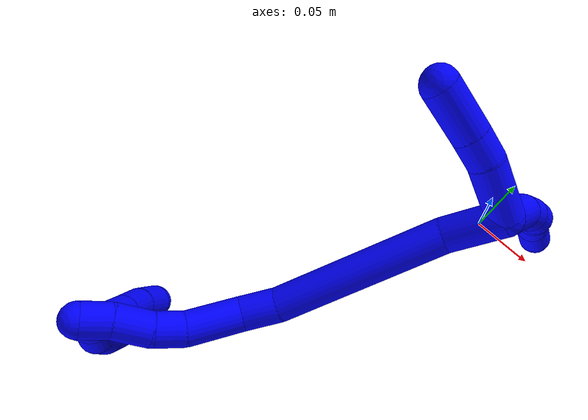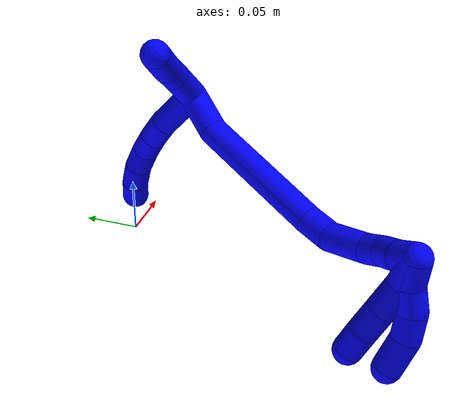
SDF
<sdf version="1.7">
 <world name="default">
  <model name="1">
   <static>0</static>
   <link name="1">
    <collision name="collision-cylinder-e_1_2_8">
     <pose>-0.002233 -0.001375 -0.022285 3.07999 -0.099688 -2.03497</pose>
     <geometry><cylinder><radius>0.0125</radius><length>0.044878</length></cylinder></geometry>
     <surface>
      <friction><ode><mu>1.16</mu><mu2>1.16</mu2><slip1>0</slip1><slip2>0</slip2></ode></friction>
      <contact><ode><kp>1e+06</kp><kd>1</kd><max_vel>0</max_vel><min_depth>0.001</min_depth></ode></contact>
     </surface>
    </collision>
    <visual name="visual-cylinder-e_1_2_8">
     <pose>-0.002233 -0.001375 -0.022285 3.07999 -0.099688 -2.03497</pose>
     <geometry><cylinder><radius>0.0125</radius><length>0.044878</length></cylinder></geometry>
     <material><ambient>0 0 1 1</ambient></material>
    </visual>
    <collision name="collision-cylinder-e_2_8_9">
     <pose>-0.003619 -0.003936 -0.056215 3.04005 0.072279 1.23683</pose>
     <geometry><cylinder><radius>0.0125</radius><length>0.023471</length></cylinder></geometry>
     <surface>
      <friction><ode><mu>1.16</mu><mu2>1.16</mu2><slip1>0</slip1><slip2>0</slip2></ode></friction>
      <contact><ode><kp>1e+06</kp><kd>1</kd><max_vel>0</max_vel><min_depth>0.001</min_depth></ode></contact>
     </surface>
    </collision>
    <visual name="visual-cylinder-e_2_8_9">
     <pose>-0.003619 -0.003936 -0.056215 3.04005 0.072279 1.23683</pose>
     <geometry><cylinder><radius>0.0125</radius><length>0.023471</length></cylinder></geometry>
     <material><ambient>0 0 1 1</ambient></material>
    </visual>
    <collision name="collision-cylinder-e_3_9_10">
     <pose>-0.001472 -0.006757 -0.078305 2.98631 0.122317 1.33363</pose>
     <geometry><cylinder><radius>0.0125</radius><length>0.021304</length></cylinder></geometry>
     <surface>
      <friction><ode><mu>1.16</mu><mu2>1.16</mu2><slip1>0</slip1><slip2>0</slip2></ode></friction>
      <contact><ode><kp>1e+06</kp><kd>1</kd><max_vel>0</max_vel><min_depth>0.001</min_depth></ode></contact>
     </surface>
    </collision>
    <visual name="visual-cylinder-e_3_9_10">
     <pose>-0.001472 -0.006757 -0.078305 2.98631 0.122317 1.33363</pose>
     <geometry><cylinder><radius>0.0125</radius><length>0.021304</length></cylinder></geometry>
     <material><ambient>0 0 1 1</ambient></material>
    </visual>
    <collision name="collision-cylinder-e_4_10_11">
     <pose>-0.000352 -0.012247 -0.098031 2.74797 -0.017882 -0.089627</pose>
     <geometry><cylinder><radius>0.0125</radius><length>0.020103</length></cylinder></geometry>
     <surface>
      <friction><ode><mu>1.16</mu><mu2>1.16</mu2><slip1>0</slip1><slip2>0</slip2></ode></friction>
      <contact><ode><kp>1e+06</kp><kd>1</kd><max_vel>0</max_vel><min_depth>0.001</min_depth></ode></contact>
     </surface>
    </collision>
    <visual name="visual-cylinder-e_4_10_11">
     <pose>-0.000352 -0.012247 -0.098031 2.74797 -0.017882 -0.089627</pose>
     <geometry><cylinder><radius>0.0125</radius><length>0.020103</length></cylinder></geometry>
     <material><ambient>0 0 1 1</ambient></material>
    </visual>
    <collision name="collision-cylinder-e_5_11_12">
     <pose>0.00144 -0.020237 -0.116221 2.70698 0.198089 0.845816</pose>
     <geometry><cylinder><radius>0.0125</radius><length>0.020037</length></cylinder></geometry>
     <surface>
      <friction><ode><mu>1.16</mu><mu2>1.16</mu2><slip1>0</slip1><slip2>0</slip2></ode></friction>
      <contact><ode><kp>1e+06</kp><kd>1</kd><max_vel>0</max_vel><min_depth>0.001</min_depth></ode></contact>
     </surface>
    </collision>
    <visual name="visual-cylinder-e_5_11_12">
     <pose>0.00144 -0.020237 -0.116221 2.70698 0.198089 0.845816</pose>
     <geometry><cylinder><radius>0.0125</radius><length>0.020037</length></cylinder></geometry>
     <material><ambient>0 0 1 1</ambient></material>
    </visual>
    <collision name="collision-cylinder-e_6_12_6">
     <pose>0.007606 -0.027628 -0.133727 2.77958 0.428111 1.7421</pose>
     <geometry><cylinder><radius>0.0125</radius><length>0.020208</length></cylinder></geometry>
     <surface>
      <friction><ode><mu>1.16</mu><mu2>1.16</mu2><slip1>0</slip1><slip2>0</slip2></ode></friction>
      <contact><ode><kp>1e+06</kp><kd>1</kd><max_vel>0</max_vel><min_depth>0.001</min_depth></ode></contact>
     </surface>
    </collision>
    <visual name="visual-cylinder-e_6_12_6">
     <pose>0.007606 -0.027628 -0.133727 2.77958 0.428111 1.7421</pose>
     <geometry><cylinder><radius>0.0125</radius><length>0.020208</length></cylinder></geometry>
     <material><ambient>0 0 1 1</ambient></material>
    </visual>
    <collision name="collision-cylinder-e_1_2_13">
     <pose>-0.017063 0.004133 0.011768 -0.337774 -0.939597 0.172711</pose>
     <geometry><cylinder><radius>0.0125</radius><length>0.042272</length></cylinder></geometry>
     <surface>
      <friction><ode><mu>1.16</mu><mu2>1.16</mu2><slip1>0</slip1><slip2>0</slip2></ode></friction>
      <contact><ode><kp>1e+06</kp><kd>1</kd><max_vel>0</max_vel><min_depth>0.001</min_depth></ode></contact>
     </surface>
    </collision>
    <visual name="visual-cylinder-e_1_2_13">
     <pose>-0.017063 0.004133 0.011768 -0.337774 -0.939597 0.172711</pose>
     <geometry><cylinder><radius>0.0125</radius><length>0.042272</length></cylinder></geometry>
     <material><ambient>0 0 1 1</ambient></material>
    </visual>
    <collision name="collision-cylinder-e_2_13_14">
     <pose>-0.042529 0.008531 0.02958 -0.043705 -0.946736 0.022389</pose>
     <geometry><cylinder><radius>0.0125</radius><length>0.020707</length></cylinder></geometry>
     <surface>
      <friction><ode><mu>1.16</mu><mu2>1.16</mu2><slip1>0</slip1><slip2>0</slip2></ode></friction>
      <contact><ode><kp>1e+06</kp><kd>1</kd><max_vel>0</max_vel><min_depth>0.001</min_depth></ode></contact>
     </surface>
    </collision>
    <visual name="visual-cylinder-e_2_13_14">
     <pose>-0.042529 0.008531 0.02958 -0.043705 -0.946736 0.022389</pose>
     <geometry><cylinder><radius>0.0125</radius><length>0.020707</length></cylinder></geometry>
     <material><ambient>0 0 1 1</ambient></material>
    </visual>
    <collision name="collision-cylinder-e_3_14_5">
     <pose>-0.065184 0.009154 0.047429 -0.030352 -0.87885 0.014269</pose>
     <geometry><cylinder><radius>0.0125</radius><length>0.037022</length></cylinder></geometry>
     <surface>
      <friction><ode><mu>1.16</mu><mu2>1.16</mu2><slip1>0</slip1><slip2>0</slip2></ode></friction>
      <contact><ode><kp>1e+06</kp><kd>1</kd><max_vel>0</max_vel><min_depth>0.001</min_depth></ode></contact>
     </surface>
    </collision>
    <visual name="visual-cylinder-e_3_14_5">
     <pose>-0.065184 0.009154 0.047429 -0.030352 -0.87885 0.014269</pose>
     <geometry><cylinder><radius>0.0125</radius><length>0.037022</length></cylinder></geometry>
     <material><ambient>0 0 1 1</ambient></material>
    </visual>
    <collision name="collision-cylinder-e_1_2_15">
     <pose>-0.001375 -0.020464 0.00382 1.38626 -0.065968 -0.0548</pose>
     <geometry><cylinder><radius>0.0125</radius><length>0.041726</length></cylinder></geometry>
     <surface>
      <friction><ode><mu>1.16</mu><mu2>1.16</mu2><slip1>0</slip1><slip2>0</slip2></ode></friction>
      <contact><ode><kp>1e+06</kp><kd>1</kd><max_vel>0</max_vel><min_depth>0.001</min_depth></ode></contact>
     </surface>
    </collision>
    <visual name="visual-cylinder-e_1_2_15">
     <pose>-0.001375 -0.020464 0.00382 1.38626 -0.065968 -0.0548</pose>
     <geometry><cylinder><radius>0.0125</radius><length>0.041726</length></cylinder></geometry>
     <material><ambient>0 0 1 1</ambient></material>
    </visual>
    <collision name="collision-cylinder-e_2_15_16">
     <pose>0.00248 -0.097348 0.031454 1.17139 0.085208 0.056541</pose>
     <geometry><cylinder><radius>0.0125</radius><length>0.122926</length></cylinder></geometry>
     <surface>
      <friction><ode><mu>1.16</mu><mu2>1.16</mu2><slip1>0</slip1><slip2>0</slip2></ode></friction>
      <contact><ode><kp>1e+06</kp><kd>1</kd><max_vel>0</max_vel><min_depth>0.001</min_depth></ode></contact>
     </surface>
    </collision>
    <visual name="visual-cylinder-e_2_15_16">
     <pose>0.00248 -0.097348 0.031454 1.17139 0.085208 0.056541</pose>
     <geometry><cylinder><radius>0.0125</radius><length>0.122926</length></cylinder></geometry>
     <material><ambient>0 0 1 1</ambient></material>
    </visual>
    <collision name="collision-cylinder-e_3_16_17">
     <pose>0.006942 -0.16487 0.062503 0.993246 -0.057991 -0.031433</pose>
     <geometry><cylinder><radius>0.0125</radius><length>0.026547</length></cylinder></geometry>
     <surface>
      <friction><ode><mu>1.16</mu><mu2>1.16</mu2><slip1>0</slip1><slip2>0</slip2></ode></friction>
      <contact><ode><kp>1e+06</kp><kd>1</kd><max_vel>0</max_vel><min_depth>0.001</min_depth></ode></contact>
     </surface>
    </collision>
    <visual name="visual-cylinder-e_3_16_17">
     <pose>0.006942 -0.16487 0.062503 0.993246 -0.057991 -0.031433</pose>
     <geometry><cylinder><radius>0.0125</radius><length>0.026547</length></cylinder></geometry>
     <material><ambient>0 0 1 1</ambient></material>
    </visual>
    <collision name="collision-cylinder-e_4_17_18">
     <pose>0.005887 -0.188562 0.085187 0.68376 -0.014296 -0.005088</pose>
     <geometry><cylinder><radius>0.0125</radius><length>0.039863</length></cylinder></geometry>
     <surface>
      <friction><ode><mu>1.16</mu><mu2>1.16</mu2><slip1>0</slip1><slip2>0</slip2></ode></friction>
      <contact><ode><kp>1e+06</kp><kd>1</kd><max_vel>0</max_vel><min_depth>0.001</min_depth></ode></contact>
     </surface>
    </collision>
    <visual name="visual-cylinder-e_4_17_18">
     <pose>0.005887 -0.188562 0.085187 0.68376 -0.014296 -0.005088</pose>
     <geometry><cylinder><radius>0.0125</radius><length>0.039863</length></cylinder></geometry>
     <material><ambient>0 0 1 1</ambient></material>
    </visual>
    <collision name="collision-cylinder-e_5_18_19">
     <pose>0.002961 -0.20603 0.109813 0.488604 -0.248861 -0.062338</pose>
     <geometry><cylinder><radius>0.0125</radius><length>0.021447</length></cylinder></geometry>
     <surface>
      <friction><ode><mu>1.16</mu><mu2>1.16</mu2><slip1>0</slip1><slip2>0</slip2></ode></friction>
      <contact><ode><kp>1e+06</kp><kd>1</kd><max_vel>0</max_vel><min_depth>0.001</min_depth></ode></contact>
     </surface>
    </collision>
    <visual name="visual-cylinder-e_5_18_19">
     <pose>0.002961 -0.20603 0.109813 0.488604 -0.248861 -0.062338</pose>
     <geometry><cylinder><radius>0.0125</radius><length>0.021447</length></cylinder></geometry>
     <material><ambient>0 0 1 1</ambient></material>
    </visual>
    <collision name="collision-cylinder-e_6_19_20">
     <pose>-0.005883 -0.216333 0.129417 0.479741 -0.485638 -0.12102</pose>
     <geometry><cylinder><radius>0.0125</radius><length>0.026579</length></cylinder></geometry>
     <surface>
      <friction><ode><mu>1.16</mu><mu2>1.16</mu2><slip1>0</slip1><slip2>0</slip2></ode></friction>
      <contact><ode><kp>1e+06</kp><kd>1</kd><max_vel>0</max_vel><min_depth>0.001</min_depth></ode></contact>
     </surface>
    </collision>
    <visual name="visual-cylinder-e_6_19_20">
     <pose>-0.005883 -0.216333 0.129417 0.479741 -0.485638 -0.12102</pose>
     <geometry><cylinder><radius>0.0125</radius><length>0.026579</length></cylinder></geometry>
     <material><ambient>0 0 1 1</ambient></material>
    </visual>
    <collision name="collision-cylinder-e_7_20_1">
     <pose>-0.014978 -0.226189 0.148861 0.456705 -0.280173 -0.06552</pose>
     <geometry><cylinder><radius>0.0125</radius><length>0.020912</length></cylinder></geometry>
     <surface>
      <friction><ode><mu>1.16</mu><mu2>1.16</mu2><slip1>0</slip1><slip2>0</slip2></ode></friction>
      <contact><ode><kp>1e+06</kp><kd>1</kd><max_vel>0</max_vel><min_depth>0.001</min_depth></ode></contact>
     </surface>
    </collision>
    <visual name="visual-cylinder-e_7_20_1">
     <pose>-0.014978 -0.226189 0.148861 0.456705 -0.280173 -0.06552</pose>
     <geometry><cylinder><radius>0.0125</radius><length>0.020912</length></cylinder></geometry>
     <material><ambient>0 0 1 1</ambient></material>
    </visual>
    <collision name="collision-cylinder-e_1_1_21">
     <pose>-0.016497 -0.235982 0.145132 2.74345 0.098854 0.48091</pose>
     <geometry><cylinder><radius>0.0125</radius><length>0.027794</length></cylinder></geometry>
     <surface>
      <friction><ode><mu>1.16</mu><mu2>1.16</mu2><slip1>0</slip1><slip2>0</slip2></ode></friction>
      <contact><ode><kp>1e+06</kp><kd>1</kd><max_vel>0</max_vel><min_depth>0.001</min_depth></ode></contact>
     </surface>
    </collision>
    <visual name="visual-cylinder-e_1_1_21">
     <pose>-0.016497 -0.235982 0.145132 2.74345 0.098854 0.48091</pose>
     <geometry><cylinder><radius>0.0125</radius><length>0.027794</length></cylinder></geometry>
     <material><ambient>0 0 1 1</ambient></material>
    </visual>
    <collision name="collision-cylinder-e_2_21_22">
     <pose>-0.017805 -0.245998 0.119992 2.78234 -0.199649 -1.00812</pose>
     <geometry><cylinder><radius>0.0125</radius><length>0.027013</length></cylinder></geometry>
     <surface>
      <friction><ode><mu>1.16</mu><mu2>1.16</mu2><slip1>0</slip1><slip2>0</slip2></ode></friction>
      <contact><ode><kp>1e+06</kp><kd>1</kd><max_vel>0</max_vel><min_depth>0.001</min_depth></ode></contact>
     </surface>
    </collision>
    <visual name="visual-cylinder-e_2_21_22">
     <pose>-0.017805 -0.245998 0.119992 2.78234 -0.199649 -1.00812</pose>
     <geometry><cylinder><radius>0.0125</radius><length>0.027013</length></cylinder></geometry>
     <material><ambient>0 0 1 1</ambient></material>
    </visual>
    <collision name="collision-cylinder-e_3_22_23">
     <pose>-0.022877 -0.254627 0.097042 2.78145 -0.209102 -1.0458</pose>
     <geometry><cylinder><radius>0.0125</radius><length>0.023063</length></cylinder></geometry>
     <surface>
      <friction><ode><mu>1.16</mu><mu2>1.16</mu2><slip1>0</slip1><slip2>0</slip2></ode></friction>
      <contact><ode><kp>1e+06</kp><kd>1</kd><max_vel>0</max_vel><min_depth>0.001</min_depth></ode></contact>
     </surface>
    </collision>
    <visual name="visual-cylinder-e_3_22_23">
     <pose>-0.022877 -0.254627 0.097042 2.78145 -0.209102 -1.0458</pose>
     <geometry><cylinder><radius>0.0125</radius><length>0.023063</length></cylinder></geometry>
     <material><ambient>0 0 1 1</ambient></material>
    </visual>
    <collision name="collision-cylinder-e_4_23_4">
     <pose>-0.025927 -0.262152 0.076026 2.81442 -0.059323 -0.355706</pose>
     <geometry><cylinder><radius>0.0125</radius><length>0.02213</length></cylinder></geometry>
     <surface>
      <friction><ode><mu>1.16</mu><mu2>1.16</mu2><slip1>0</slip1><slip2>0</slip2></ode></friction>
      <contact><ode><kp>1e+06</kp><kd>1</kd><max_vel>0</max_vel><min_depth>0.001</min_depth></ode></contact>
     </surface>
    </collision>
    <visual name="visual-cylinder-e_4_23_4">
     <pose>-0.025927 -0.262152 0.076026 2.81442 -0.059323 -0.355706</pose>
     <geometry><cylinder><radius>0.0125</radius><length>0.02213</length></cylinder></geometry>
     <material><ambient>0 0 1 1</ambient></material>
    </visual>
    <collision name="collision-cylinder-e_1_1_24">
     <pose>-0.016119 -0.237372 0.148304 2.52748 0.148263 0.460145</pose>
     <geometry><cylinder><radius>0.0125</radius><length>0.023694</length></cylinder></geometry>
     <surface>
      <friction><ode><mu>1.16</mu><mu2>1.16</mu2><slip1>0</slip1><slip2>0</slip2></ode></friction>
      <contact><ode><kp>1e+06</kp><kd>1</kd><max_vel>0</max_vel><min_depth>0.001</min_depth></ode></contact>
     </surface>
    </collision>
    <visual name="visual-cylinder-e_1_1_24">
     <pose>-0.016119 -0.237372 0.148304 2.52748 0.148263 0.460145</pose>
     <geometry><cylinder><radius>0.0125</radius><length>0.023694</length></cylinder></geometry>
     <material><ambient>0 0 1 1</ambient></material>
    </visual>
    <collision name="collision-cylinder-e_2_24_25">
     <pose>-0.011582 -0.253133 0.131987 2.21311 0.242768 0.477904</pose>
     <geometry><cylinder><radius>0.0125</radius><length>0.023183</length></cylinder></geometry>
     <surface>
      <friction><ode><mu>1.16</mu><mu2>1.16</mu2><slip1>0</slip1><slip2>0</slip2></ode></friction>
      <contact><ode><kp>1e+06</kp><kd>1</kd><max_vel>0</max_vel><min_depth>0.001</min_depth></ode></contact>
     </surface>
    </collision>
    <visual name="visual-cylinder-e_2_24_25">
     <pose>-0.011582 -0.253133 0.131987 2.21311 0.242768 0.477904</pose>
     <geometry><cylinder><radius>0.0125</radius><length>0.023183</length></cylinder></geometry>
     <material><ambient>0 0 1 1</ambient></material>
    </visual>
    <collision name="collision-cylinder-e_3_25_26">
     <pose>-0.008444 -0.269668 0.116469 2.43283 0.030423 0.082184</pose>
     <geometry><cylinder><radius>0.0125</radius><length>0.023134</length></cylinder></geometry>
     <surface>
      <friction><ode><mu>1.16</mu><mu2>1.16</mu2><slip1>0</slip1><slip2>0</slip2></ode></friction>
      <contact><ode><kp>1e+06</kp><kd>1</kd><max_vel>0</max_vel><min_depth>0.001</min_depth></ode></contact>
     </surface>
    </collision>
    <visual name="visual-cylinder-e_3_25_26">
     <pose>-0.008444 -0.269668 0.116469 2.43283 0.030423 0.082184</pose>
     <geometry><cylinder><radius>0.0125</radius><length>0.023134</length></cylinder></geometry>
     <material><ambient>0 0 1 1</ambient></material>
    </visual>
    <collision name="collision-cylinder-e_4_26_3">
     <pose>-0.010321 -0.284036 0.094538 2.66193 -0.149204 -0.593248</pose>
     <geometry><cylinder><radius>0.0125</radius><length>0.029988</length></cylinder></geometry>
     <surface>
      <friction><ode><mu>1.16</mu><mu2>1.16</mu2><slip1>0</slip1><slip2>0</slip2></ode></friction>
      <contact><ode><kp>1e+06</kp><kd>1</kd><max_vel>0</max_vel><min_depth>0.001</min_depth></ode></contact>
     </surface>
    </collision>
    <visual name="visual-cylinder-e_4_26_3">
     <pose>-0.010321 -0.284036 0.094538 2.66193 -0.149204 -0.593248</pose>
     <geometry><cylinder><radius>0.0125</radius><length>0.029988</length></cylinder></geometry>
     <material><ambient>0 0 1 1</ambient></material>
    </visual>
    <collision name="collision-sphere-3">
     <pose>-0.01255 -0.290879 0.081383 0 -0 0</pose>
     <geometry><sphere><radius>0.0125</radius></sphere></geometry>
     <surface>
      <friction><ode><mu>1.16</mu><mu2>1.16</mu2><slip1>0</slip1><slip2>0</slip2></ode></friction>
      <contact><ode><kp>1e+06</kp><kd>1</kd><max_vel>0</max_vel><min_depth>0.001</min_depth></ode></contact>
     </surface>
    </collision>
    <visual name="visual-sphere-3">
     <pose>-0.01255 -0.290879 0.081383 0 -0 0</pose>
     <geometry><sphere><radius>0.0125</radius></sphere></geometry>
     <material><ambient>0 0 1 1</ambient></material>
    </visual>
    <collision name="collision-sphere-26">
     <pose>-0.008092 -0.277194 0.107692 0 -0 0</pose>
     <geometry><sphere><radius>0.0125</radius></sphere></geometry>
     <surface>
      <friction><ode><mu>1.16</mu><mu2>1.16</mu2><slip1>0</slip1><slip2>0</slip2></ode></friction>
      <contact><ode><kp>1e+06</kp><kd>1</kd><max_vel>0</max_vel><min_depth>0.001</min_depth></ode></contact>
     </surface>
    </collision>
    <visual name="visual-sphere-26">
     <pose>-0.008092 -0.277194 0.107692 0 -0 0</pose>
     <geometry><sphere><radius>0.0125</radius></sphere></geometry>
     <material><ambient>0 0 1 1</ambient></material>
    </visual>
    <collision name="collision-sphere-25">
     <pose>-0.008796 -0.262142 0.125247 0 -0 0</pose>
     <geometry><sphere><radius>0.0125</radius></sphere></geometry>
     <surface>
      <friction><ode><mu>1.16</mu><mu2>1.16</mu2><slip1>0</slip1><slip2>0</slip2></ode></friction>
      <contact><ode><kp>1e+06</kp><kd>1</kd><max_vel>0</max_vel><min_depth>0.001</min_depth></ode></contact>
     </surface>
    </collision>
    <visual name="visual-sphere-25">
     <pose>-0.008796 -0.262142 0.125247 0 -0 0</pose>
     <geometry><sphere><radius>0.0125</radius></sphere></geometry>
     <material><ambient>0 0 1 1</ambient></material>
    </visual>
    <collision name="collision-sphere-24">
     <pose>-0.014369 -0.244124 0.138727 0 -0 0</pose>
     <geometry><sphere><radius>0.0125</radius></sphere></geometry>
     <surface>
      <friction><ode><mu>1.16</mu><mu2>1.16</mu2><slip1>0</slip1><slip2>0</slip2></ode></friction>
      <contact><ode><kp>1e+06</kp><kd>1</kd><max_vel>0</max_vel><min_depth>0.001</min_depth></ode></contact>
     </surface>
    </collision>
    <visual name="visual-sphere-24">
     <pose>-0.014369 -0.244124 0.138727 0 -0 0</pose>
     <geometry><sphere><radius>0.0125</radius></sphere></geometry>
     <material><ambient>0 0 1 1</ambient></material>
    </visual>
    <collision name="collision-sphere-4">
     <pose>-0.026583 -0.265702 0.065566 0 -0 0</pose>
     <geometry><sphere><radius>0.0125</radius></sphere></geometry>
     <surface>
      <friction><ode><mu>1.16</mu><mu2>1.16</mu2><slip1>0</slip1><slip2>0</slip2></ode></friction>
      <contact><ode><kp>1e+06</kp><kd>1</kd><max_vel>0</max_vel><min_depth>0.001</min_depth></ode></contact>
     </surface>
    </collision>
    <visual name="visual-sphere-4">
     <pose>-0.026583 -0.265702 0.065566 0 -0 0</pose>
     <geometry><sphere><radius>0.0125</radius></sphere></geometry>
     <material><ambient>0 0 1 1</ambient></material>
    </visual>
    <collision name="collision-sphere-23">
     <pose>-0.025271 -0.258602 0.086486 0 -0 0</pose>
     <geometry><sphere><radius>0.0125</radius></sphere></geometry>
     <surface>
      <friction><ode><mu>1.16</mu><mu2>1.16</mu2><slip1>0</slip1><slip2>0</slip2></ode></friction>
      <contact><ode><kp>1e+06</kp><kd>1</kd><max_vel>0</max_vel><min_depth>0.001</min_depth></ode></contact>
     </surface>
    </collision>
    <visual name="visual-sphere-23">
     <pose>-0.025271 -0.258602 0.086486 0 -0 0</pose>
     <geometry><sphere><radius>0.0125</radius></sphere></geometry>
     <material><ambient>0 0 1 1</ambient></material>
    </visual>
    <collision name="collision-sphere-22">
     <pose>-0.020483 -0.250652 0.107599 0 -0 0</pose>
     <geometry><sphere><radius>0.0125</radius></sphere></geometry>
     <surface>
      <friction><ode><mu>1.16</mu><mu2>1.16</mu2><slip1>0</slip1><slip2>0</slip2></ode></friction>
      <contact><ode><kp>1e+06</kp><kd>1</kd><max_vel>0</max_vel><min_depth>0.001</min_depth></ode></contact>
     </surface>
    </collision>
    <visual name="visual-sphere-22">
     <pose>-0.020483 -0.250652 0.107599 0 -0 0</pose>
     <geometry><sphere><radius>0.0125</radius></sphere></geometry>
     <material><ambient>0 0 1 1</ambient></material>
    </visual>
    <collision name="collision-sphere-21">
     <pose>-0.015126 -0.241343 0.132385 0 -0 0</pose>
     <geometry><sphere><radius>0.0125</radius></sphere></geometry>
     <surface>
      <friction><ode><mu>1.16</mu><mu2>1.16</mu2><slip1>0</slip1><slip2>0</slip2></ode></friction>
      <contact><ode><kp>1e+06</kp><kd>1</kd><max_vel>0</max_vel><min_depth>0.001</min_depth></ode></contact>
     </surface>
    </collision>
    <visual name="visual-sphere-21">
     <pose>-0.015126 -0.241343 0.132385 0 -0 0</pose>
     <geometry><sphere><radius>0.0125</radius></sphere></geometry>
     <material><ambient>0 0 1 1</ambient></material>
    </visual>
    <collision name="collision-sphere-1">
     <pose>-0.017869 -0.23062 0.15788 0 -0 0</pose>
     <geometry><sphere><radius>0.0125</radius></sphere></geometry>
     <surface>
      <friction><ode><mu>1.16</mu><mu2>1.16</mu2><slip1>0</slip1><slip2>0</slip2></ode></friction>
      <contact><ode><kp>1e+06</kp><kd>1</kd><max_vel>0</max_vel><min_depth>0.001</min_depth></ode></contact>
     </surface>
    </collision>
    <visual name="visual-sphere-1">
     <pose>-0.017869 -0.23062 0.15788 0 -0 0</pose>
     <geometry><sphere><radius>0.0125</radius></sphere></geometry>
     <material><ambient>0 0 1 1</ambient></material>
    </visual>
    <collision name="collision-sphere-12">
     <pose>0.003412 -0.024373 -0.125131 0 -0 0</pose>
     <geometry><sphere><radius>0.0125</radius></sphere></geometry>
     <surface>
      <friction><ode><mu>1.16</mu><mu2>1.16</mu2><slip1>0</slip1><slip2>0</slip2></ode></friction>
      <contact><ode><kp>1e+06</kp><kd>1</kd><max_vel>0</max_vel><min_depth>0.001</min_depth></ode></contact>
     </surface>
    </collision>
    <visual name="visual-sphere-12">
     <pose>0.003412 -0.024373 -0.125131 0 -0 0</pose>
     <geometry><sphere><radius>0.0125</radius></sphere></geometry>
     <material><ambient>0 0 1 1</ambient></material>
    </visual>
    <collision name="collision-sphere-11">
     <pose>-0.000532 -0.016101 -0.107312 0 -0 0</pose>
     <geometry><sphere><radius>0.0125</radius></sphere></geometry>
     <surface>
      <friction><ode><mu>1.16</mu><mu2>1.16</mu2><slip1>0</slip1><slip2>0</slip2></ode></friction>
      <contact><ode><kp>1e+06</kp><kd>1</kd><max_vel>0</max_vel><min_depth>0.001</min_depth></ode></contact>
     </surface>
    </collision>
    <visual name="visual-sphere-11">
     <pose>-0.000532 -0.016101 -0.107312 0 -0 0</pose>
     <geometry><sphere><radius>0.0125</radius></sphere></geometry>
     <material><ambient>0 0 1 1</ambient></material>
    </visual>
    <collision name="collision-sphere-10">
     <pose>-0.000172 -0.008393 -0.08875 0 -0 0</pose>
     <geometry><sphere><radius>0.0125</radius></sphere></geometry>
     <surface>
      <friction><ode><mu>1.16</mu><mu2>1.16</mu2><slip1>0</slip1><slip2>0</slip2></ode></friction>
      <contact><ode><kp>1e+06</kp><kd>1</kd><max_vel>0</max_vel><min_depth>0.001</min_depth></ode></contact>
     </surface>
    </collision>
    <visual name="visual-sphere-10">
     <pose>-0.000172 -0.008393 -0.08875 0 -0 0</pose>
     <geometry><sphere><radius>0.0125</radius></sphere></geometry>
     <material><ambient>0 0 1 1</ambient></material>
    </visual>
    <collision name="collision-sphere-9">
     <pose>-0.002771 -0.005122 -0.06786 0 -0 0</pose>
     <geometry><sphere><radius>0.0125</radius></sphere></geometry>
     <surface>
      <friction><ode><mu>1.16</mu><mu2>1.16</mu2><slip1>0</slip1><slip2>0</slip2></ode></friction>
      <contact><ode><kp>1e+06</kp><kd>1</kd><max_vel>0</max_vel><min_depth>0.001</min_depth></ode></contact>
     </surface>
    </collision>
    <visual name="visual-sphere-9">
     <pose>-0.002771 -0.005122 -0.06786 0 -0 0</pose>
     <geometry><sphere><radius>0.0125</radius></sphere></geometry>
     <material><ambient>0 0 1 1</ambient></material>
    </visual>
    <collision name="collision-sphere-2">
     <geometry><sphere><radius>0.0125</radius></sphere></geometry>
     <surface>
      <friction><ode><mu>1.16</mu><mu2>1.16</mu2><slip1>0</slip1><slip2>0</slip2></ode></friction>
      <contact><ode><kp>1e+06</kp><kd>1</kd><max_vel>0</max_vel><min_depth>0.001</min_depth></ode></contact>
     </surface>
    </collision>
    <visual name="visual-sphere-2">
     <geometry><sphere><radius>0.0125</radius></sphere></geometry>
     <material><ambient>0 0 1 1</ambient></material>
    </visual>
    <collision name="collision-sphere-19">
     <pose>0.00032 -0.210908 0.11899 0 -0 0</pose>
     <geometry><sphere><radius>0.0125</radius></sphere></geometry>
     <surface>
      <friction><ode><mu>1.16</mu><mu2>1.16</mu2><slip1>0</slip1><slip2>0</slip2></ode></friction>
      <contact><ode><kp>1e+06</kp><kd>1</kd><max_vel>0</max_vel><min_depth>0.001</min_depth></ode></contact>
     </surface>
    </collision>
    <visual name="visual-sphere-19">
     <pose>0.00032 -0.210908 0.11899 0 -0 0</pose>
     <geometry><sphere><radius>0.0125</radius></sphere></geometry>
     <material><ambient>0 0 1 1</ambient></material>
    </visual>
    <collision name="collision-sphere-8">
     <pose>-0.004466 -0.002749 -0.044571 0 -0 0</pose>
     <geometry><sphere><radius>0.0125</radius></sphere></geometry>
     <surface>
      <friction><ode><mu>1.16</mu><mu2>1.16</mu2><slip1>0</slip1><slip2>0</slip2></ode></friction>
      <contact><ode><kp>1e+06</kp><kd>1</kd><max_vel>0</max_vel><min_depth>0.001</min_depth></ode></contact>
     </surface>
    </collision>
    <visual name="visual-sphere-8">
     <pose>-0.004466 -0.002749 -0.044571 0 -0 0</pose>
     <geometry><sphere><radius>0.0125</radius></sphere></geometry>
     <material><ambient>0 0 1 1</ambient></material>
    </visual>
    <collision name="collision-sphere-6">
     <pose>0.011801 -0.030884 -0.142323 0 -0 0</pose>
     <geometry><sphere><radius>0.0125</radius></sphere></geometry>
     <surface>
      <friction><ode><mu>1.16</mu><mu2>1.16</mu2><slip1>0</slip1><slip2>0</slip2></ode></friction>
      <contact><ode><kp>1e+06</kp><kd>1</kd><max_vel>0</max_vel><min_depth>0.001</min_depth></ode></contact>
     </surface>
    </collision>
    <visual name="visual-sphere-6">
     <pose>0.011801 -0.030884 -0.142323 0 -0 0</pose>
     <geometry><sphere><radius>0.0125</radius></sphere></geometry>
     <material><ambient>0 0 1 1</ambient></material>
    </visual>
    <collision name="collision-sphere-13">
     <pose>-0.034127 0.008266 0.023536 0 -0 0</pose>
     <geometry><sphere><radius>0.0125</radius></sphere></geometry>
     <surface>
      <friction><ode><mu>1.16</mu><mu2>1.16</mu2><slip1>0</slip1><slip2>0</slip2></ode></friction>
      <contact><ode><kp>1e+06</kp><kd>1</kd><max_vel>0</max_vel><min_depth>0.001</min_depth></ode></contact>
     </surface>
    </collision>
    <visual name="visual-sphere-13">
     <pose>-0.034127 0.008266 0.023536 0 -0 0</pose>
     <geometry><sphere><radius>0.0125</radius></sphere></geometry>
     <material><ambient>0 0 1 1</ambient></material>
    </visual>
    <collision name="collision-sphere-14">
     <pose>-0.05093 0.008795 0.035624 0 -0 0</pose>
     <geometry><sphere><radius>0.0125</radius></sphere></geometry>
     <surface>
      <friction><ode><mu>1.16</mu><mu2>1.16</mu2><slip1>0</slip1><slip2>0</slip2></ode></friction>
      <contact><ode><kp>1e+06</kp><kd>1</kd><max_vel>0</max_vel><min_depth>0.001</min_depth></ode></contact>
     </surface>
    </collision>
    <visual name="visual-sphere-14">
     <pose>-0.05093 0.008795 0.035624 0 -0 0</pose>
     <geometry><sphere><radius>0.0125</radius></sphere></geometry>
     <material><ambient>0 0 1 1</ambient></material>
    </visual>
    <collision name="collision-sphere-5">
     <pose>-0.079437 0.009512 0.059234 0 -0 0</pose>
     <geometry><sphere><radius>0.0125</radius></sphere></geometry>
     <surface>
      <friction><ode><mu>1.16</mu><mu2>1.16</mu2><slip1>0</slip1><slip2>0</slip2></ode></friction>
      <contact><ode><kp>1e+06</kp><kd>1</kd><max_vel>0</max_vel><min_depth>0.001</min_depth></ode></contact>
     </surface>
    </collision>
    <visual name="visual-sphere-5">
     <pose>-0.079437 0.009512 0.059234 0 -0 0</pose>
     <geometry><sphere><radius>0.0125</radius></sphere></geometry>
     <material><ambient>0 0 1 1</ambient></material>
    </visual>
    <collision name="collision-sphere-15">
     <pose>-0.002751 -0.040928 0.00764 0 -0 0</pose>
     <geometry><sphere><radius>0.0125</radius></sphere></geometry>
     <surface>
      <friction><ode><mu>1.16</mu><mu2>1.16</mu2><slip1>0</slip1><slip2>0</slip2></ode></friction>
      <contact><ode><kp>1e+06</kp><kd>1</kd><max_vel>0</max_vel><min_depth>0.001</min_depth></ode></contact>
     </surface>
    </collision>
    <visual name="visual-sphere-15">
     <pose>-0.002751 -0.040928 0.00764 0 -0 0</pose>
     <geometry><sphere><radius>0.0125</radius></sphere></geometry>
     <material><ambient>0 0 1 1</ambient></material>
    </visual>
    <collision name="collision-sphere-16">
     <pose>0.007711 -0.153768 0.055268 0 -0 0</pose>
     <geometry><sphere><radius>0.0125</radius></sphere></geometry>
     <surface>
      <friction><ode><mu>1.16</mu><mu2>1.16</mu2><slip1>0</slip1><slip2>0</slip2></ode></friction>
      <contact><ode><kp>1e+06</kp><kd>1</kd><max_vel>0</max_vel><min_depth>0.001</min_depth></ode></contact>
     </surface>
    </collision>
    <visual name="visual-sphere-16">
     <pose>0.007711 -0.153768 0.055268 0 -0 0</pose>
     <geometry><sphere><radius>0.0125</radius></sphere></geometry>
     <material><ambient>0 0 1 1</ambient></material>
    </visual>
    <collision name="collision-sphere-17">
     <pose>0.006172 -0.175972 0.069738 0 -0 0</pose>
     <geometry><sphere><radius>0.0125</radius></sphere></geometry>
     <surface>
      <friction><ode><mu>1.16</mu><mu2>1.16</mu2><slip1>0</slip1><slip2>0</slip2></ode></friction>
      <contact><ode><kp>1e+06</kp><kd>1</kd><max_vel>0</max_vel><min_depth>0.001</min_depth></ode></contact>
     </surface>
    </collision>
    <visual name="visual-sphere-17">
     <pose>0.006172 -0.175972 0.069738 0 -0 0</pose>
     <geometry><sphere><radius>0.0125</radius></sphere></geometry>
     <material><ambient>0 0 1 1</ambient></material>
    </visual>
    <collision name="collision-sphere-18">
     <pose>0.005603 -0.201151 0.100636 0 -0 0</pose>
     <geometry><sphere><radius>0.0125</radius></sphere></geometry>
     <surface>
      <friction><ode><mu>1.16</mu><mu2>1.16</mu2><slip1>0</slip1><slip2>0</slip2></ode></friction>
      <contact><ode><kp>1e+06</kp><kd>1</kd><max_vel>0</max_vel><min_depth>0.001</min_depth></ode></contact>
     </surface>
    </collision>
    <visual name="visual-sphere-18">
     <pose>0.005603 -0.201151 0.100636 0 -0 0</pose>
     <geometry><sphere><radius>0.0125</radius></sphere></geometry>
     <material><ambient>0 0 1 1</ambient></material>
    </visual>
    <collision name="collision-sphere-20">
     <pose>-0.012086 -0.221758 0.139843 0 -0 0</pose>
     <geometry><sphere><radius>0.0125</radius></sphere></geometry>
     <surface>
      <friction><ode><mu>1.16</mu><mu2>1.16</mu2><slip1>0</slip1><slip2>0</slip2></ode></friction>
      <contact><ode><kp>1e+06</kp><kd>1</kd><max_vel>0</max_vel><min_depth>0.001</min_depth></ode></contact>
     </surface>
    </collision>
    <visual name="visual-sphere-20">
     <pose>-0.012086 -0.221758 0.139843 0 -0 0</pose>
     <geometry><sphere><radius>0.0125</radius></sphere></geometry>
     <material><ambient>0 0 1 1</ambient></material>
    </visual>
    <inertial>
     <pose>-0.009323 -0.122077 0.044219 0 -0 0</pose>
     <mass>0.75</mass>
     <inertia><ixx>0.0002</ixx><ixy>0</ixy><ixz>0</ixz><iyy>5.7e-05</iyy><iyz>0</iyz><izz>0.000167</izz></inertia>
    </inertial>
   </link>
   <pose>0.027104 -0.051319 0.135556 0.705534 0.240528 -0.497031</pose>
  </model>
 </world>
</sdf>
